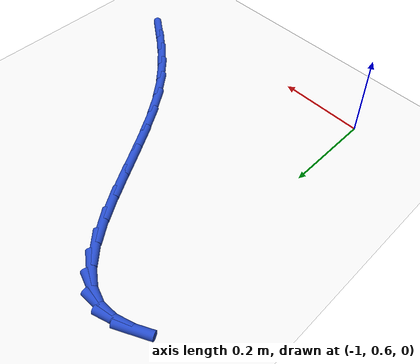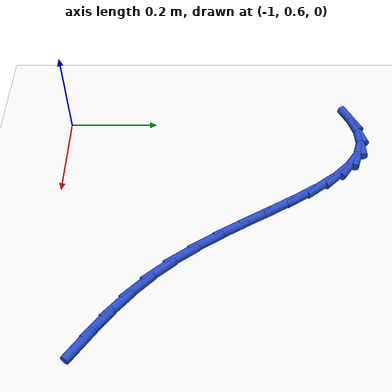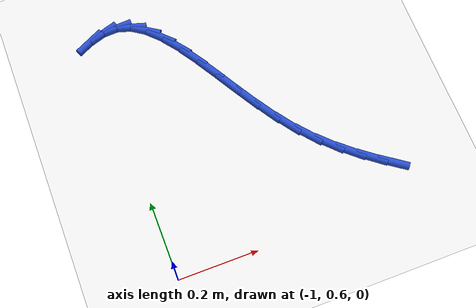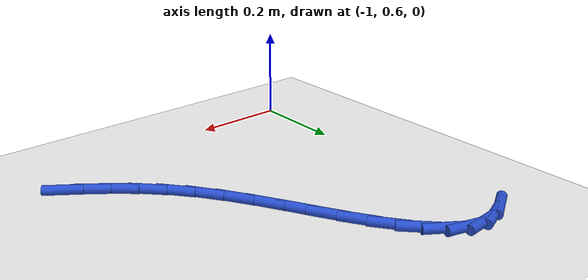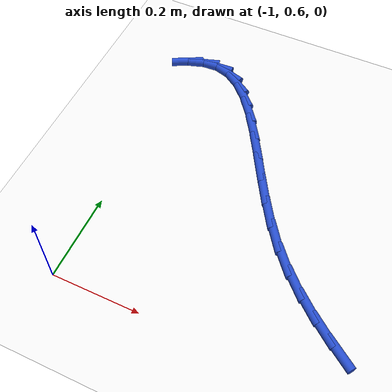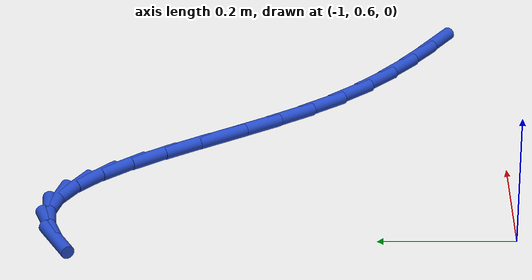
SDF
<sdf version="1.6">
 <world name="default">
  <model name="ground_plane">
   <static>1</static>
   <link name="link">
    <collision name="collision">
     <geometry><plane><normal>0 0 1</normal><size>100 100</size></plane></geometry>
     <surface><friction><ode><mu>100</mu><mu2>50</mu2></ode></friction></surface>
    </collision>
    <visual name="visual">
     <cast_shadows>0</cast_shadows>
     <geometry><plane><normal>0 0 1</normal><size>100 100</size></plane></geometry>
     <material>
      <script><uri>file://media/materials/scripts/gazebo.material</uri><name>Gazebo/WhiteGlow</name></script>
     </material>
    </visual>
   </link>
  </model>
  <model name="line">
   <link name="link_17">
    <pose>-0.41401460236107673 0.6858272010285766 0.01 0 1.57 -0.6202130189465316</pose>
    <collision name="collision">
     <geometry><cylinder><radius>0.01</radius><length>0.08</length></cylinder></geometry>
    </collision>
    <visual name="visual">
     <material>
      <script><name>Gazebo/Blue</name><uri>file://media/materials/scripts/gazebo.material</uri></script>
     </material>
     <geometry><cylinder><radius>0.01</radius><length>0.08</length></cylinder></geometry>
    </visual>
   </link>
   <link name="link_18">
    <pose>-0.45715828661498203 0.7166417423769246 0.01 0 1.57 -0.6650494758078626</pose>
    <collision name="collision">
     <geometry><cylinder><radius>0.01</radius><length>0.08</length></cylinder></geometry>
    </collision>
    <visual name="visual">
     <material>
      <script><name>Gazebo/Blue</name><uri>file://media/materials/scripts/gazebo.material</uri></script>
     </material>
     <geometry><cylinder><radius>0.01</radius><length>0.08</length></cylinder></geometry>
    </visual>
   </link>
   <link name="link_19">
    <pose>-0.4995466936234724 0.7498839089564937 0.01 0 1.57 -0.7243257233090041</pose>
    <collision name="collision">
     <geometry><cylinder><radius>0.01</radius><length>0.08</length></cylinder></geometry>
    </collision>
    <visual name="visual">
     <material>
      <script><name>Gazebo/Blue</name><uri>file://media/materials/scripts/gazebo.material</uri></script>
     </material>
     <geometry><cylinder><radius>0.01</radius><length>0.08</length></cylinder></geometry>
    </visual>
   </link>
   <link name="link_20">
    <pose>-0.5406421227966053 0.7862431052247737 0.01 0 1.57 -0.796739428894704</pose>
    <collision name="collision">
     <geometry><cylinder><radius>0.01</radius><length>0.08</length></cylinder></geometry>
    </collision>
    <visual name="visual">
     <material>
      <script><name>Gazebo/Blue</name><uri>file://media/materials/scripts/gazebo.material</uri></script>
     </material>
     <geometry><cylinder><radius>0.01</radius><length>0.08</length></cylinder></geometry>
    </visual>
   </link>
   <link name="link_21">
    <pose>-0.5799068735444384 0.8264087356392544 0.01 0 1.57 -0.8800578718668401</pose>
    <collision name="collision">
     <geometry><cylinder><radius>0.01</radius><length>0.08</length></cylinder></geometry>
    </collision>
    <visual name="visual">
     <material>
      <script><name>Gazebo/Blue</name><uri>file://media/materials/scripts/gazebo.material</uri></script>
     </material>
     <geometry><cylinder><radius>0.01</radius><length>0.08</length></cylinder></geometry>
    </visual>
   </link>
   <link name="link_22">
    <pose>-0.6168100834937159 0.8710544857775265 0.01 0 1.57 -0.9576282131948122</pose>
    <collision name="collision">
     <geometry><cylinder><radius>0.01</radius><length>0.08</length></cylinder></geometry>
    </collision>
    <visual name="visual">
     <material>
      <script><name>Gazebo/Blue</name><uri>file://media/materials/scripts/gazebo.material</uri></script>
     </material>
     <geometry><cylinder><radius>0.01</radius><length>0.08</length></cylinder></geometry>
    </visual>
   </link>
   <link name="link_23">
    <pose>-0.6512145563338 0.9199491284538198 0.01 0 1.57 -1.009935038923003</pose>
    <collision name="collision">
     <geometry><cylinder><radius>0.01</radius><length>0.08</length></cylinder></geometry>
    </collision>
    <visual name="visual">
     <material>
      <script><name>Gazebo/Blue</name><uri>file://media/materials/scripts/gazebo.material</uri></script>
     </material>
     <geometry><cylinder><radius>0.01</radius><length>0.08</length></cylinder></geometry>
    </visual>
   </link>
   <link name="link_24">
    <pose>-0.6835839049696123 0.9714803676549154 0.01 0 1.57 -1.039046206031808</pose>
    <collision name="collision">
     <geometry><cylinder><radius>0.01</radius><length>0.08</length></cylinder></geometry>
    </collision>
    <visual name="visual">
     <material>
      <script><name>Gazebo/Blue</name><uri>file://media/materials/scripts/gazebo.material</uri></script>
     </material>
     <geometry><cylinder><radius>0.01</radius><length>0.08</length></cylinder></geometry>
    </visual>
   </link>
   <link name="link_25">
    <pose>-0.7144323446235916 1.0239195887734225 0.01 0 1.57 -1.0466203358452024</pose>
    <collision name="collision">
     <geometry><cylinder><radius>0.01</radius><length>0.08</length></cylinder></geometry>
    </collision>
    <visual name="visual">
     <material>
      <script><name>Gazebo/Blue</name><uri>file://media/materials/scripts/gazebo.material</uri></script>
     </material>
     <geometry><cylinder><radius>0.01</radius><length>0.08</length></cylinder></geometry>
    </visual>
   </link>
   <link name="link_26">
    <pose>-0.7442740905181762 1.0755381772019499 0.01 0 1.57 -1.0317616313111426</pose>
    <collision name="collision">
     <geometry><cylinder><radius>0.01</radius><length>0.08</length></cylinder></geometry>
    </collision>
    <visual name="visual">
     <material>
      <script><name>Gazebo/Blue</name><uri>file://media/materials/scripts/gazebo.material</uri></script>
     </material>
     <geometry><cylinder><radius>0.01</radius><length>0.08</length></cylinder></geometry>
    </visual>
   </link>
   <link name="link_27">
    <pose>-0.7736233578758047 1.124607518333107 0.01 0 1.57 -0.9904052859496894</pose>
    <collision name="collision">
     <geometry><cylinder><radius>0.01</radius><length>0.08</length></cylinder></geometry>
    </collision>
    <visual name="visual">
     <material>
      <script><name>Gazebo/Blue</name><uri>file://media/materials/scripts/gazebo.material</uri></script>
     </material>
     <geometry><cylinder><radius>0.01</radius><length>0.08</length></cylinder></geometry>
    </visual>
   </link>
   <link name="link_28">
    <pose>-0.8029943619189166 1.1693989975595038 0.01 0 1.57 -0.9139299928060335</pose>
    <collision name="collision">
     <geometry><cylinder><radius>0.01</radius><length>0.08</length></cylinder></geometry>
    </collision>
    <visual name="visual">
     <material>
      <script><name>Gazebo/Blue</name><uri>file://media/materials/scripts/gazebo.material</uri></script>
     </material>
     <geometry><cylinder><radius>0.01</radius><length>0.08</length></cylinder></geometry>
    </visual>
   </link>
   <link name="link_29">
    <pose>-0.8329013178699499 1.208184000273749 0.01 0 1.57 -0.7868945814173393</pose>
    <collision name="collision">
     <geometry><cylinder><radius>0.01</radius><length>0.08</length></cylinder></geometry>
    </collision>
    <visual name="visual">
     <material>
      <script><name>Gazebo/Blue</name><uri>file://media/materials/scripts/gazebo.material</uri></script>
     </material>
     <geometry><cylinder><radius>0.01</radius><length>0.08</length></cylinder></geometry>
    </visual>
   </link>
   <link name="link_30">
    <pose>-0.8638584409513439 1.2392339118684517 0.01 0 1.57 -0.5859818625668931</pose>
    <collision name="collision">
     <geometry><cylinder><radius>0.01</radius><length>0.08</length></cylinder></geometry>
    </collision>
    <visual name="visual">
     <material>
      <script><name>Gazebo/Blue</name><uri>file://media/materials/scripts/gazebo.material</uri></script>
     </material>
     <geometry><cylinder><radius>0.01</radius><length>0.08</length></cylinder></geometry>
    </visual>
   </link>
   <link name="link_31">
    <pose>-0.8963799463855368 1.260820117736221 0.01 0 1.57 -0.29182411329928054</pose>
    <collision name="collision">
     <geometry><cylinder><radius>0.01</radius><length>0.08</length></cylinder></geometry>
    </collision>
    <visual name="visual">
     <material>
      <script><name>Gazebo/Blue</name><uri>file://media/materials/scripts/gazebo.material</uri></script>
     </material>
     <geometry><cylinder><radius>0.01</radius><length>0.08</length></cylinder></geometry>
    </visual>
   </link>
   <link name="link_32">
    <pose>-0.9309800493949676 1.2712140032696668 0.01 0 1.57 0.053700631312974124</pose>
    <collision name="collision">
     <geometry><cylinder><radius>0.01</radius><length>0.08</length></cylinder></geometry>
    </collision>
    <visual name="visual">
     <material>
      <script><name>Gazebo/Blue</name><uri>file://media/materials/scripts/gazebo.material</uri></script>
     </material>
     <geometry><cylinder><radius>0.01</radius><length>0.08</length></cylinder></geometry>
    </visual>
   </link>
   <link name="link_33">
    <pose>-0.9680781363720831 1.2692198953684701 0.01 0 1.57 0.3148752583680107</pose>
    <collision name="collision">
     <geometry><cylinder><radius>0.01</radius><length>0.08</length></cylinder></geometry>
    </collision>
    <visual name="visual">
     <material>
      <script><name>Gazebo/Blue</name><uri>file://media/materials/scripts/gazebo.material</uri></script>
     </material>
     <geometry><cylinder><radius>0.01</radius><length>0.08</length></cylinder></geometry>
    </visual>
   </link>
   <link name="link_34">
    <pose>-1.0076130260902345 1.2563429286001233 0.01 0 1.57 0.4735951893861203</pose>
    <collision name="collision">
     <geometry><cylinder><radius>0.01</radius><length>0.08</length></cylinder></geometry>
    </collision>
    <visual name="visual">
     <material>
      <script><name>Gazebo/Blue</name><uri>file://media/materials/scripts/gazebo.material</uri></script>
     </material>
     <geometry><cylinder><radius>0.01</radius><length>0.08</length></cylinder></geometry>
    </visual>
   </link>
  </model>
 </world>
</sdf>
